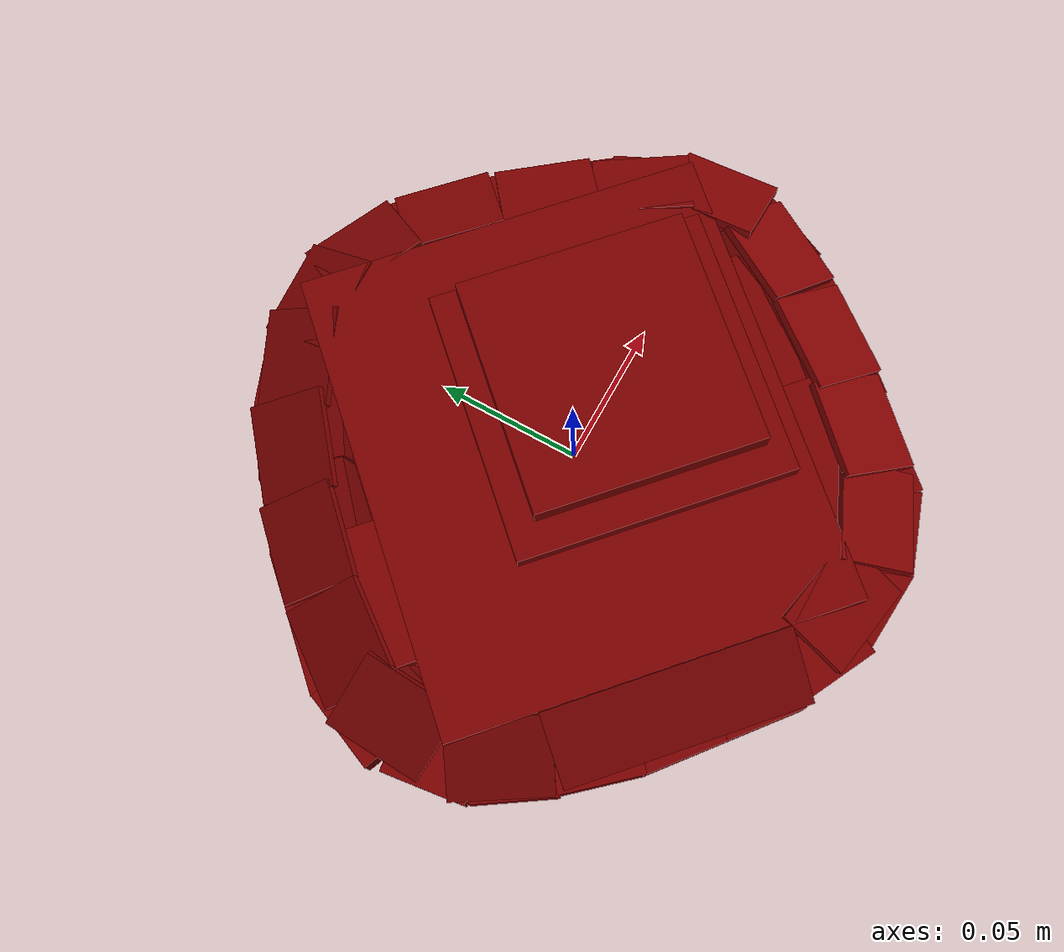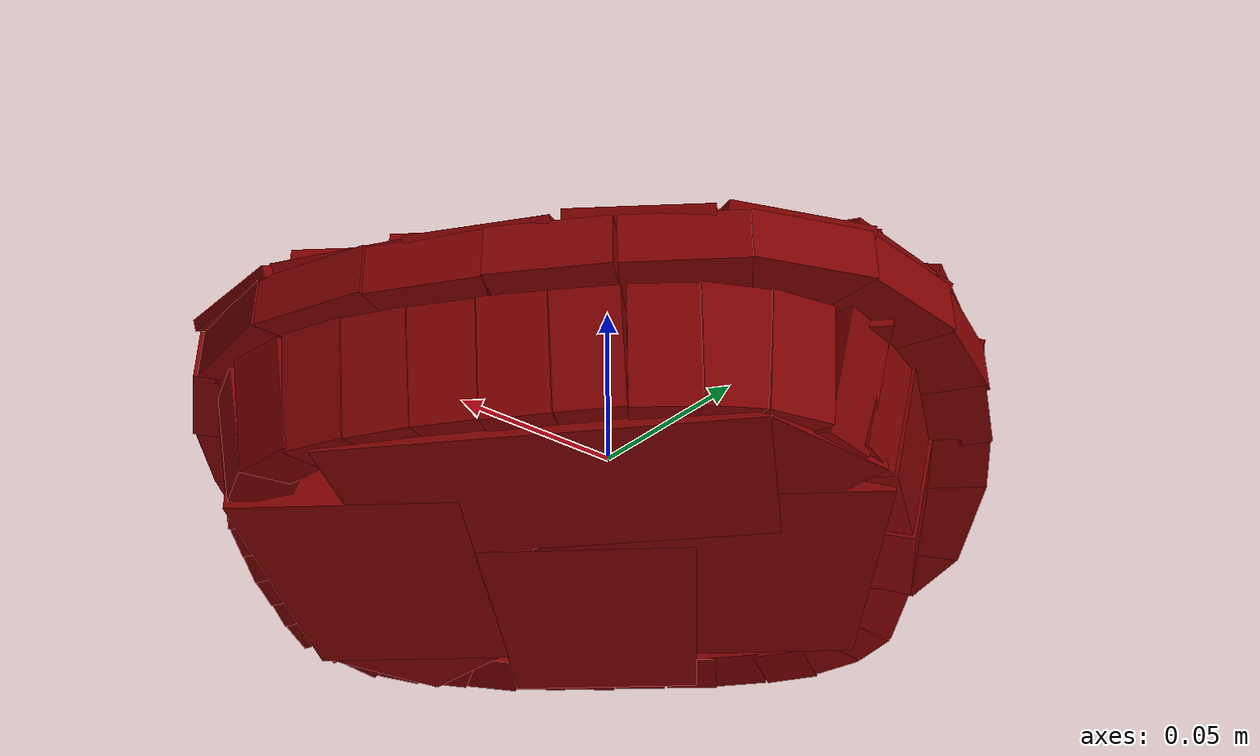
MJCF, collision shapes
<?xml version='1.0' encoding='UTF-8'?>
<mujoco model="model">
  <option timestep="0.0005" gravity="0.0 0.0 -9.81"/>
  <compiler angle="radian"/>
  <asset>
    <mesh file="visuals/lid.obj" name="lid_vis"/>
    <texture file="visuals/T_BC001.png" name="lid_material" type="2d"/>
    <material name="lid_material" rgba="1 1 1 1.0" texture="lid_material" shininess="0.141421377658844" specular="0.33333333333333337"/>
  </asset>
  <default>
    <default class="visual">
      <geom conaffinity="0" contype="0" group="1" type="mesh"/>
    </default>
    <default class="collision">
      <geom group="0" rgba="0.5 0 0 0.5" density="1.0" solref="0.001 1" solimp="0.998 0.998 0.001" condim="3" />
    </default>
    <default class="spawn">
      <geom group="0" rgba="1 1 1 0.5" contype="0" conaffinity="0"/>
      <site group="0" rgba="1 1 1 0.5"/>
    </default>
    <default class="region">
      <geom group="1" conaffinity="0" contype="0" rgba="0 1 0 0" mass="0"/>
    </default>
  </default>
  <worldbody>
    <body>
      <body name="object">
        <geom mesh="lid_vis" type="mesh" solimp="0.998 0.998 0.001" solref="0.001 1" friction="0.95 0.3 0.1" class="visual" material="lid_material"/>
        <geom type="box" pos="-0.05185865983366966 0.05922549217939377 -0.021527692675590515" size="0.007544738706201315 0.017779678106307983 0.017874857410788536" quat="0.9072901010513306 -0.05065613240003586 -0.11448842287063599 -0.4014362692832947" class="collision"/>
        <geom type="box" pos="0.04486085847020149 0.0359661728143692 -0.024636656045913696" size="0.0287039652466774 0.05168871209025383 0.016265371814370155" quat="0.3605293035507202 0.0 0.0 -0.9327479004859924" class="collision"/>
        <geom type="box" pos="0.04738443344831467 -0.03969482332468033 -0.024636656045913696" size="0.02870395965874195 0.051688697189092636 0.016265371814370155" quat="-5.6530947034616474e-08 -0.9327478408813477 0.360529363155365 -2.5012468540808186e-08" class="collision"/>
        <geom type="box" pos="0.011916608549654484 -0.0007175686187110841 -0.024636656045913696" size="0.018565427511930466 0.09427861869335175 0.016265345737338066" quat="1.0 0.0 0.0 0.0" class="collision"/>
        <geom type="box" pos="-0.07608671486377716 0.03413498401641846 -0.02094477415084839" size="0.007544738240540028 0.017779678106307983 0.017874857410788536" quat="0.928838312625885 -0.05714477226138115 -0.11139169335365295 -0.34869152307510376" class="collision"/>
        <geom type="box" pos="-0.08988232910633087 0.013218649663031101 -0.021191254258155823" size="0.007544738240540028 0.008036906830966473 0.017874855548143387" quat="0.9802276492118835 -0.009296840988099575 -0.13564103841781616 -0.1437666416168213" class="collision"/>
        <geom type="box" pos="-0.02439357340335846 0.08000247925519943 -0.020733609795570374" size="0.007544738706201315 0.017779678106307983 0.017874857410788536" quat="0.877102792263031 -0.06747352331876755 -0.10468074679374695 -0.4638749957084656" class="collision"/>
        <geom type="box" pos="-0.003941820003092289 0.09080488234758377 -0.02058124542236328" size="0.007544739171862602 0.007864255458116531 0.017874859273433685" quat="0.5791116952896118 -0.11290156096220016 0.05257347226142883 0.8056791424751282" class="collision"/>
        <geom type="box" pos="-0.09173634648323059 -0.002037953119724989 -0.021227002143859863" size="0.007544739171862602 0.008036906830966473 0.017874855548143387" quat="0.9906824231147766 -0.003020864212885499 -0.13066312670707703 0.03829242289066315" class="collision"/>
        <geom type="box" pos="-0.088335782289505 -0.017409387975931168 -0.021298229694366455" size="0.007544738706201315 0.008036906830966473 0.017874855548143387" quat="0.9662243723869324 0.021646970883011818 -0.11633702367544174 0.22892692685127258" class="collision"/>
        <geom type="box" pos="-0.08026549220085144 -0.0316769964993 -0.020950675010681152" size="0.007544738706201315 0.008036906830966473 0.017874855548143387" quat="0.9403917789459229 0.038739584386348724 -0.1367790251970291 0.30895644426345825" class="collision"/>
        <geom type="box" pos="-0.07045218348503113 -0.0430806539952755 -0.021065369248390198" size="0.00754473777487874 0.008036906830966473 0.017874857410788536" quat="0.9160547852516174 0.03866706043481827 -0.13522520661354065 0.37558308243751526" class="collision"/>
        <geom type="box" pos="-0.05895046889781952 -0.055042121559381485 -0.020593643188476562" size="0.007544738706201315 0.008036906830966473 0.017874857410788536" quat="0.9101928472518921 0.03659069910645485 -0.13580173254013062 0.3895740807056427" class="collision"/>
        <geom type="box" pos="-0.04636504128575325 -0.06582131236791611 -0.020806819200515747" size="0.00754473777487874 0.008036906830966473 0.017874857410788536" quat="0.8933998346328735 0.051553864032030106 -0.12745489180088043 0.42770808935165405" class="collision"/>
        <geom type="box" pos="-0.033749986439943314 -0.07576290518045425 -0.020869553089141846" size="0.007544738706201315 0.008036905899643898 0.017874855548143387" quat="0.8882637023925781 0.0564606748521328 -0.12507371604442596 0.4383563995361328" class="collision"/>
        <geom type="box" pos="-0.021462038159370422 -0.08411961048841476 -0.02103632688522339" size="0.007544738240540028 0.008036906830966473 0.017874855548143387" quat="0.8537693023681641 0.047147687524557114 -0.12887336313724518 0.5022417306900024" class="collision"/>
        <geom type="box" pos="-0.006799695082008839 -0.09164080768823624 -0.020920753479003906" size="0.007544738706201315 0.008036906830966473 0.017874855548143387" quat="0.818927526473999 0.07135900110006332 -0.11504504084587097 0.5577008128166199" class="collision"/>
        <geom type="box" pos="0.00746395718306303 -0.09616724401712418 -0.021072953939437866" size="0.007544738706201315 0.008036905899643898 0.017874855548143387" quat="0.7449325919151306 0.08647815883159637 -0.10736026614904404 0.6527409553527832" class="collision"/>
        <geom type="box" pos="0.019609801471233368 -0.09607464075088501 -0.021179676055908203" size="0.007544739171862602 0.008036906830966473 0.017874857410788536" quat="0.6357498168945312 0.06894844025373459 -0.11937668174505234 0.7594850063323975" class="collision"/>
        <geom type="box" pos="0.03382815048098564 -0.09128018468618393 -0.020976394414901733" size="0.007544738706201315 0.008036906830966473 0.017874855548143387" quat="0.4954412877559662 0.08186069130897522 -0.10020682215690613 0.858950138092041" class="collision"/>
        <geom type="box" pos="0.04666256159543991 -0.08310888707637787 -0.021863862872123718" size="0.00754473777487874 0.008036905899643898 0.017874855548143387" quat="0.40088602900505066 0.09609908610582352 -0.06470105051994324 0.9087734222412109" class="collision"/>
        <geom type="box" pos="0.05779751390218735 -0.0725739523768425 -0.021161675453186035" size="0.007544737309217453 0.008036906830966473 0.017874855548143387" quat="0.3610670566558838 0.0932004451751709 -0.0688108429312706 0.925315797328949" class="collision"/>
        <geom type="box" pos="0.0685606449842453 -0.06064433231949806 -0.021380439400672913" size="0.007544738240540028 0.008036906830966473 0.017874855548143387" quat="0.35778653621673584 0.10509306937456131 -0.038165003061294556 0.9270855784416199" class="collision"/>
        <geom type="box" pos="0.07866710424423218 -0.04881243780255318 -0.021345868706703186" size="0.007544738240540028 0.008036906830966473 0.017874855548143387" quat="0.31875693798065186 0.10340747982263565 -0.04252059385180473 0.9412188529968262" class="collision"/>
        <geom type="box" pos="0.08818644285202026 -0.03637231886386871 -0.021119654178619385" size="0.007544738706201315 0.008036906830966473 0.017874857410788536" quat="0.3190155625343323 0.09754876047372818 -0.04053633287549019 0.9418439865112305" class="collision"/>
        <geom type="box" pos="0.09647920727729797 -0.023995136842131615 -0.020704269409179688" size="0.007544738240540028 0.008036906830966473 0.017874857410788536" quat="0.22916801273822784 0.0933113619685173 -0.0495169498026371 0.9676378965377808" class="collision"/>
        <geom type="box" pos="0.10216939449310303 -0.009397796355187893 -0.021259456872940063" size="0.007544737309217453 0.008036906830966473 0.017874855548143387" quat="0.13600315153598785 0.09546850621700287 -0.03667835146188736 0.9854154586791992" class="collision"/>
        <geom type="box" pos="0.10295253992080688 0.004771903622895479 -0.02134689688682556" size="0.00754473777487874 0.008036906830966473 0.017874855548143387" quat="0.09387583285570145 -0.09558378159999847 0.0017728970851749182 -0.9909833073616028" class="collision"/>
        <geom type="box" pos="0.09806568920612335 0.018577560782432556 -0.02168591320514679" size="0.00754473777487874 0.008036906830966473 0.017874855548143387" quat="0.21621207892894745 -0.09571527689695358 -0.030097905546426773 -0.9711771607398987" class="collision"/>
        <geom type="box" pos="0.09041783213615417 0.03122066706418991 -0.02162480354309082" size="0.007544738240540028 0.008036906830966473 0.017874855548143387" quat="0.29078102111816406 -0.09775891155004501 -0.022594274953007698 -0.9515141248703003" class="collision"/>
        <geom type="box" pos="0.08111152052879333 0.04347287863492966 -0.02139286696910858" size="0.007544737309217453 0.008036905899643898 0.017874859273433685" quat="0.32540521025657654 -0.09458212554454803 -0.029905878007411957 -0.9403570294380188" class="collision"/>
        <geom type="box" pos="0.07110784947872162 0.0557776615023613 -0.02162843942642212" size="0.00754473777487874 0.008036906830966473 0.017874855548143387" quat="0.3564703166484833 -0.09552361071109772 -0.02674676850438118 -0.9290257096290588" class="collision"/>
        <geom type="box" pos="0.06019126996397972 0.06767053157091141 -0.021293416619300842" size="0.007544738240540028 0.008036906830966473 0.017874857410788536" quat="0.369017094373703 -0.09587699174880981 -0.02545090764760971 -0.9241137504577637" class="collision"/>
        <geom type="box" pos="0.04862464964389801 0.0788734033703804 -0.021529629826545715" size="0.007544738706201315 0.008036906830966473 0.017874859273433685" quat="0.42267680168151855 -0.0886475071310997 -0.03818197920918465 -0.9011260271072388" class="collision"/>
        <geom type="box" pos="0.03686709702014923 0.08762886375188828 -0.02128472924232483" size="0.007544738240540028 0.008036906830966473 0.017874859273433685" quat="0.5134166479110718 -0.09211457520723343 -0.02882961556315422 -0.852694034576416" class="collision"/>
        <geom type="box" pos="0.024331096559762955 0.0929768905043602 -0.021599173545837402" size="0.007544738240540028 0.008036906830966473 0.017874855548143387" quat="0.6118721961975098 -0.07164642959833145 -0.04786426201462746 -0.7862494587898254" class="collision"/>
        <geom type="box" pos="0.009855498559772968 0.09431455284357071 -0.021774321794509888" size="0.007544738706201315 0.008036906830966473 0.017874855548143387" quat="0.7560747265815735 -0.10890800505876541 -0.10911876708269119 -0.6360685229301453" class="collision"/>
        <geom type="box" pos="-0.029661227017641068 0.030326373875141144 -0.024636656045913696" size="0.02870395965874195 0.051688697189092636 0.016265371814370155" quat="-5.6530947034616474e-08 -0.9327478408813477 0.360529363155365 -2.5012468540808186e-08" class="collision"/>
        <geom type="box" pos="-0.01397292036563158 -0.02232387848198414 -0.024636656045913696" size="0.02870395965874195 0.051688697189092636 0.016265371814370155" quat="-5.6530947034616474e-08 -0.9327478408813477 0.360529363155365 -2.5012468540808186e-08" class="collision"/>
        <geom type="box" pos="-0.01616940274834633 -0.018484704196453094 -0.00588458776473999" size="0.10617286711931229 0.024640828371047974 0.006455041002482176" quat="-5.6530947034616474e-08 -0.9327478408813477 0.360529363155365 -2.5012468540808186e-08" class="collision"/>
        <geom type="box" pos="-0.060902103781700134 0.07355940341949463 -0.00588458776473999" size="0.009101573377847672 0.014519496820867062 0.006455041002482176" quat="-5.8135043445872725e-08 -0.9053866863250732 0.42458802461624146 -2.1016377971250222e-08" class="collision"/>
        <geom type="box" pos="-0.04138797149062157 0.0886244848370552 -0.00588458776473999" size="0.009101572446525097 0.014519496820867062 0.006455041002482176" quat="-5.9111140870982126e-08 -0.8830769062042236 0.4692283272743225 -1.8089894027184528e-08" class="collision"/>
        <geom type="box" pos="-0.020153135061264038 0.10038722306489944 -0.00588458776473999" size="0.009101572446525097 0.014519497752189636 0.006455041002482176" quat="-1.1482154782527232e-08 0.826142430305481 -0.5634613633155823 6.074151315260679e-08" class="collision"/>
        <geom type="box" pos="0.00540704932063818 0.1065857782959938 -0.00588458776473999" size="0.009101573377847672 0.014519496820867062 0.006455041002482176" quat="-1.7609683711228286e-09 0.7269629240036011 -0.6866766810417175 6.17921500634111e-08" class="collision"/>
        <geom type="box" pos="0.029096554964780807 0.10290295630693436 -0.00588458776473999" size="0.009101573377847672 0.014519496820867062 0.006455041002482176" quat="-1.2411471850271028e-08 -0.8346786499023438 -0.5507372617721558 -6.055846313302027e-08" class="collision"/>
        <geom type="box" pos="0.05038054287433624 0.08873554319143295 -0.00588458776473999" size="0.009101573377847672 0.014519496820867062 0.006455041002482176" quat="-2.2605322058666388e-08 -0.9167077541351318 -0.39955833554267883 -5.753581788781048e-08" class="collision"/>
        <geom type="box" pos="0.07101354002952576 0.06814820319414139 -0.00588458776473999" size="0.009101573377847672 0.014519496820867062 0.006455041002482176" quat="-2.5020032268230352e-08 -0.9327961206436157 -0.36040449142456055 -5.6527600378331044e-08" class="collision"/>
        <geom type="box" pos="0.08861439675092697 0.04617176949977875 -0.00588458776473999" size="0.009101574309170246 0.014519497752189636 0.006455041002482176" quat="-5.544132619661468e-08 0.9469403624534607 0.3214092254638672 2.7342837327637426e-08" class="collision"/>
        <geom type="box" pos="0.10274675488471985 0.024413108825683594 -0.00588458776473999" size="0.009101574309170246 0.014519496820867062 0.006455041002482176" quat="-3.314442764690284e-08 -0.9760048389434814 -0.2177487462759018 -5.218062781864319e-08" class="collision"/>
        <geom type="box" pos="0.10830335319042206 0.00010630913311615586 -0.00588458776473999" size="0.009184935130178928 0.014571604318916798 0.0064550419338047504" quat="1.0 0.0 0.0 0.0" class="collision"/>
        <geom type="box" pos="0.10402023792266846 -0.023511290550231934 -0.00588458776473999" size="0.009101573377847672 0.014519496820867062 0.006455041002482176" quat="7.375899002681763e-08 -0.21338844299316406 -0.976967453956604 -1.611037880877575e-08" class="collision"/>
        <geom type="box" pos="0.09125397354364395 -0.04450320452451706 -0.00588458776473999" size="0.009101573377847672 0.014519497752189636 0.006455041002482176" quat="7.179443883842396e-08 -0.3093564808368683 -0.9509461522102356 -2.3355765321753097e-08" class="collision"/>
        <geom type="box" pos="0.07388605177402496 -0.06592299044132233 -0.00588458776473999" size="0.009101572446525097 0.014519496820867062 0.006455041002482176" quat="7.057738571347727e-08 -0.3551066815853119 -0.9348257780075073 -2.680980948355227e-08" class="collision"/>
        <geom type="box" pos="0.028093397617340088 -0.10451996326446533 -0.00588458776473999" size="0.009101573377847672 0.014519496820867062 0.006455041002482176" quat="-6.095341120726516e-08 -0.8150233030319214 0.5794281959533691 -1.0298191632784892e-08" class="collision"/>
        <geom type="box" pos="0.0038137538358569145 -0.10787414014339447 -0.00588458776473999" size="0.009101573377847672 0.014519496820867062 0.006455041002482176" quat="5.522866430851536e-08 0.6818137168884277 -0.7315258383750916 5.147550297124326e-08" class="collision"/>
        <geom type="box" pos="-0.019684866070747375 -0.10297388583421707 -0.00588458776473999" size="0.009101574309170246 0.014519496820867062 0.006455041002482176" quat="6.430572341287188e-08 0.5239400863647461 -0.8517551422119141 3.955637239982934e-08" class="collision"/>
        <geom type="box" pos="-0.04283295199275017 -0.08997500687837601 -0.00588458776473999" size="0.009101574309170246 0.014519496820867062 0.006455041002482176" quat="6.816453890223784e-08 0.42992067337036133 -0.9028666615486145 3.24581073130048e-08" class="collision"/>
        <geom type="box" pos="-0.06444515287876129 -0.07242695242166519 -0.00588458776473999" size="0.009101574309170246 0.014519496820867062 0.006455041002482176" quat="6.816453890223784e-08 0.42992067337036133 -0.9028666615486145 3.24581073130048e-08" class="collision"/>
        <geom type="box" pos="-0.08348184823989868 -0.054311878979206085 -0.00588458776473999" size="0.009101573377847672 0.014519496820867062 0.006455041002482176" quat="7.052737061030712e-08 0.35684558749198914 -0.9341633915901184 2.6941092912124986e-08" class="collision"/>
        <geom type="box" pos="-0.10034909844398499 -0.03360195457935333 -0.00588458776473999" size="0.009101573377847672 0.014519496820867062 0.006455041002482176" quat="7.228523912772289e-08 0.28860902786254883 -0.9574470520019531 2.1789375637126795e-08" class="collision"/>
        <geom type="box" pos="-0.1097782552242279 -0.00988162960857153 -0.00588458776473999" size="0.009101572446525097 0.014519496820867062 0.006455041002482176" quat="7.533927970371224e-08 0.06478843837976456 -0.9978989958763123 4.8913912920056646e-09" class="collision"/>
        <geom type="box" pos="-0.10812291502952576 0.017893999814987183 -0.00588458776473999" size="0.009101573377847672 0.014519496820867062 0.006455041002482176" quat="7.407520286051295e-08 -0.1932181566953659 -0.9811558127403259 -1.4587565821955195e-08" class="collision"/>
        <geom type="box" pos="0.0026698512956500053 0.0009430056088604033 -0.0003181061474606395" size="0.07069089263677597 0.08119808882474899 0.013797645457088947" quat="-5.6530947034616474e-08 -0.9327478408813477 0.360529363155365 -2.5012468540808186e-08" class="collision"/>
        <geom type="box" pos="0.022790182381868362 -0.001409343909472227 0.015848100185394287" size="0.04781182482838631 0.04727159067988396 0.004339537117630243" quat="-5.6530947034616474e-08 -0.9327478408813477 0.360529363155365 -2.5012468540808186e-08" class="collision"/>
        <geom type="box" pos="0.02262016013264656 -0.0015776376239955425 0.02585214376449585" size="0.03500141203403473 0.03290880098938942 0.00464213639497757" quat="-5.6530947034616474e-08 -0.9327478408813477 0.360529363155365 -2.5012468540808186e-08" class="collision"/>
        <geom type="box" name="handle_main" pos="0.02277325838804245 -0.0005615720874629915 0.03610047698020935" size="0.03838014602661133 0.03996178135275841 0.004128095228224993" quat="-5.6530947034616474e-08 -0.9327478408813477 0.360529363155365 -2.5012468540808186e-08" class="collision"/>
        <geom type="box" pos="-0.05790766328573227 -0.06970115005970001 0.006413173396140337" size="0.042325932532548904 0.013574738055467606 0.0014671796234324574" quat="0.21298328042030334 -0.9081060886383057 0.3510047197341919 -0.08232317864894867" class="collision"/>
        <geom type="box" pos="-0.09867243468761444 -0.028031086549162865 0.005725052207708359" size="0.017148824408650398 0.01357473898679018 0.0014671796234324574" quat="0.19238948822021484 -0.8531010150909424 0.47257718443870544 -0.10897601395845413" class="collision"/>
        <geom type="box" pos="-0.10407152771949768 0.0072237541899085045 0.007235230412334204" size="0.017148824408650398 0.01357473898679018 0.0014671797398477793" quat="0.15895302593708038 -0.6685397028923035 0.7162420153617859 -0.12159769982099533" class="collision"/>
        <geom type="box" pos="-0.0921337679028511 0.03363950550556183 0.007135722320526838" size="0.01714882254600525 0.01357473898679018 0.0014671796234324574" quat="0.10641001164913177 -0.4367712736129761 0.8757546544075012 -0.17595887184143066" class="collision"/>
        <geom type="box" pos="-0.06937568634748459 0.060518860816955566 0.006348751485347748" size="0.01714882254600525 0.01357473898679018 0.0014671796234324574" quat="0.07793119549751282 -0.38656967878341675 0.8998111486434937 -0.1866292804479599" class="collision"/>
        <geom type="box" pos="-0.04402051493525505 0.08202480524778366 0.006605226080864668" size="0.017148824408650398 0.01357473898679018 0.0014671796234324574" quat="0.09012704342603683 -0.32609331607818604 0.923449695110321 -0.181054949760437" class="collision"/>
        <geom type="box" pos="-0.016301386058330536 0.09695552289485931 0.006584461312741041" size="0.017148824408650398 0.01357473898679018 0.0014671797398477793" quat="0.07331138104200363 -0.19933010637760162 0.9603438377380371 -0.18064527213573456" class="collision"/>
        <geom type="box" pos="0.10599905997514725 0.000503533286973834 0.007235230412334204" size="0.017148824408650398 0.013574738055467606 0.0014671797398477793" quat="0.11323445290327072 -0.6807942390441895 -0.7046042680740356 0.16501522064208984" class="collision"/>
        <geom type="box" pos="0.09684710204601288 -0.02700180932879448 0.007135722320526838" size="0.017148824408650398 0.01357473898679018 0.0014671796234324574" quat="0.17023420333862305 -0.8520527482032776 -0.4813746213912964 0.1153469905257225" class="collision"/>
        <geom type="box" pos="0.07698020339012146 -0.05608335882425308 0.006348751485347748" size="0.017148824408650398 0.013574739918112755 0.0014671796234324574" quat="0.18235978484153748 -0.8786673545837402 -0.43248116970062256 0.08745666593313217" class="collision"/>
        <geom type="box" pos="0.053976308554410934 -0.08008775115013123 0.006605226080864668" size="0.01714882254600525 0.01357473898679018 0.0014671796234324574" quat="0.17616362869739532 -0.9053947329521179 -0.37330496311187744 0.09934864938259125" class="collision"/>
        <geom type="box" pos="0.027943428605794907 -0.09779553860425949 0.006584461312741041" size="0.017148826271295547 0.01357473898679018 0.0014671797398477793" quat="0.180751770734787 -0.9606329202651978 -0.19793222844600677 0.07304839789867401" class="collision"/>
        <geom type="box" pos="-0.003920332528650761 -0.10061827301979065 0.007485807873308659" size="0.017148824408650398 0.01357473898679018 0.0014671796234324574" quat="0.19421471655368805 -0.976507842540741 0.09178882092237473 0.016967959702014923" class="collision"/>
        <geom type="box" pos="0.02815311774611473 0.09852951765060425 0.006551083642989397" size="0.017148824408650398 0.01357473898679018 0.0014671797398477793" quat="0.02644282579421997 -0.22576114535331726 -0.9524948596954346 0.2026972621679306" class="collision"/>
        <geom type="box" pos="0.054953645914793015 0.07992899417877197 0.006451575551182032" size="0.01714882254600525 0.01357473898679018 0.0014671796234324574" quat="0.06294038146734238 -0.37417924404144287 -0.904270589351654 0.19576291739940643" class="collision"/>
        <geom type="box" pos="0.07841648906469345 0.05366256833076477 0.005664604250341654" size="0.017148824408650398 0.01357473898679018 0.0014671796234324574" quat="0.08968064188957214 -0.4252753257751465 -0.882177472114563 0.18127641081809998" class="collision"/>
        <geom type="box" pos="0.09619764238595963 0.025569500401616096 0.006908965762704611" size="0.017148824408650398 0.01357473898679018 0.0014671796234324574" quat="0.07747113704681396 -0.4827987253665924 -0.8520572781562805 0.18682077527046204" class="collision"/>
        <geom type="box" pos="0.005941720679402351 0.10240532457828522 0.00655108317732811" size="0.017148826271295547 0.01357473898679018 0.0014671797398477793" quat="-0.024901216849684715 0.018711639568209648 -0.9787055253982544 0.20289240777492523" class="collision"/>
        <geom class="region" name="reg_main" type="box" pos="-1.0000000000287557e-07 3.04999999999056e-07 -8.500000000036256e-08" size="0.1414 0.1414 0.041376595"/>
      </body>
    </body>
  </worldbody>
  <actuator/>
</mujoco>
